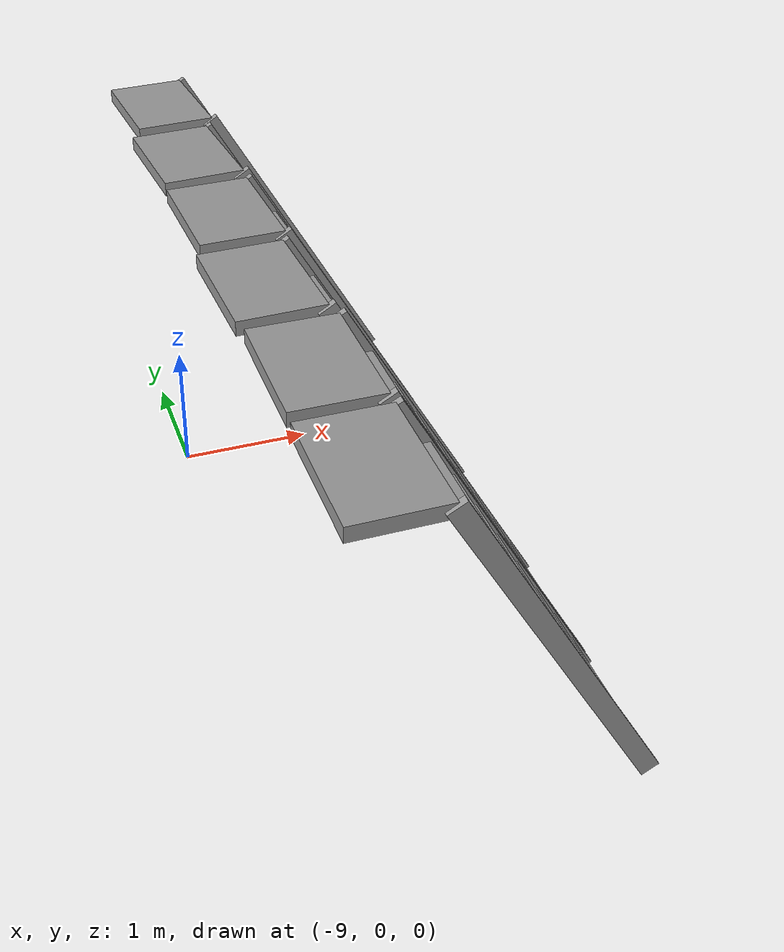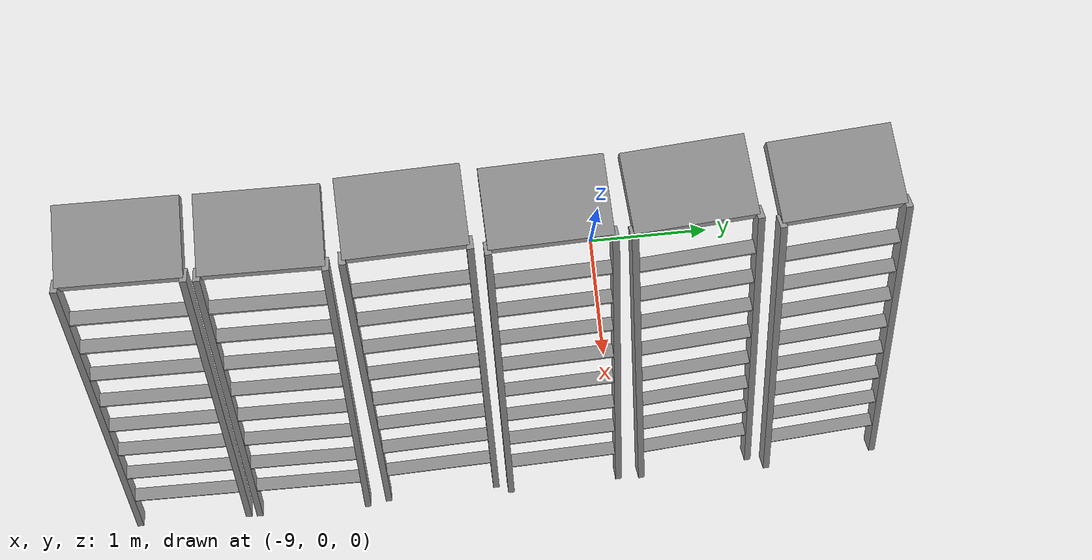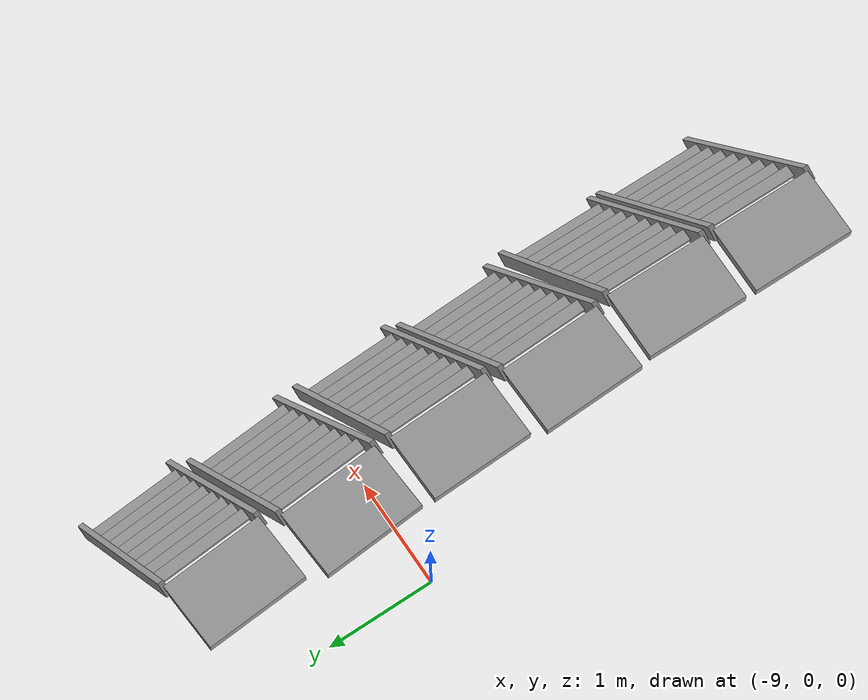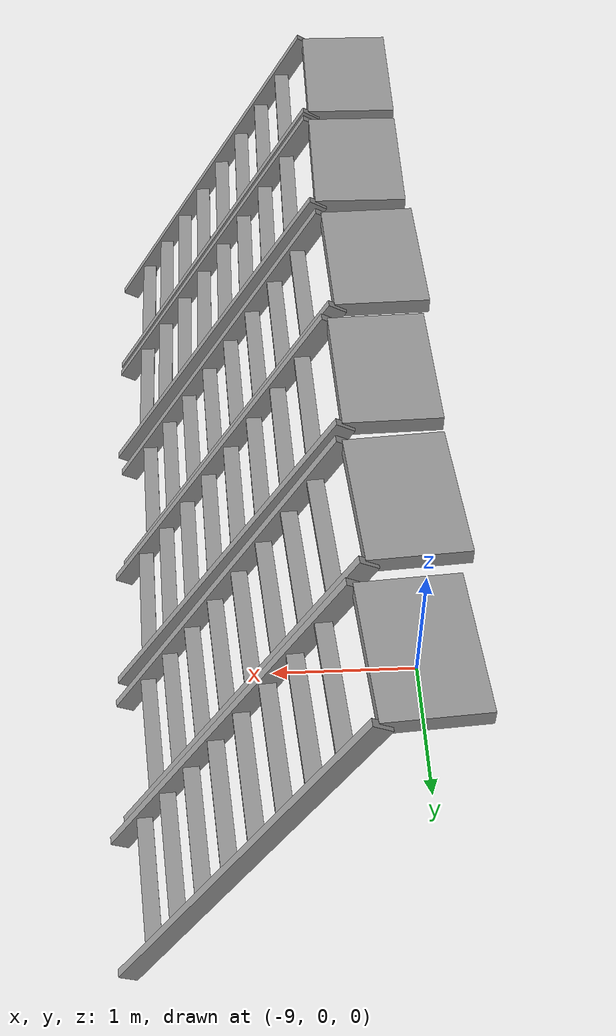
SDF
<sdf version="1.4">
 <world name="IGVC_Advanced_Course">
  <model name="ladder_60deg_0rails">
   <static>1</static>
   <link name="step0">
    <pose>0 0.15396 0.266667 0 -0 0</pose>
    <inertial>
     <mass>9.75482</mass>
     <inertia>
      <ixx>0.00957124</ixx>
      <iyy>0.65963</iyy>
      <izz>0.666842</izz>
      <ixy>0</ixy>
      <ixz>0</ixz>
      <iyz>0</iyz>
     </inertia>
    </inertial>
    <collision name="collision"><geometry><box><size>0.9 0.1016 0.0381</size></box></geometry></collision>
    <visual name="visual">
     <geometry><box><size>0.9 0.1016 0.0381</size></box></geometry>
     <material>
      <script><uri>file://media/materials/scripts/gazebo.material</uri><name>Gazebo/Grey</name></script>
     </material>
    </visual>
    <velocity_decay><linear>0</linear><angular>0</angular></velocity_decay>
   </link>
   <link name="step1">
    <pose>0 0.30792 0.533333 0 -0 0</pose>
    <inertial>
     <mass>9.75482</mass>
     <inertia>
      <ixx>0.00957124</ixx>
      <iyy>0.65963</iyy>
      <izz>0.666842</izz>
      <ixy>0</ixy>
      <ixz>0</ixz>
      <iyz>0</iyz>
     </inertia>
    </inertial>
    <collision name="collision"><geometry><box><size>0.9 0.1016 0.0381</size></box></geometry></collision>
    <visual name="visual">
     <geometry><box><size>0.9 0.1016 0.0381</size></box></geometry>
     <material>
      <script><uri>file://media/materials/scripts/gazebo.material</uri><name>Gazebo/Grey</name></script>
     </material>
    </visual>
    <velocity_decay><linear>0</linear><angular>0</angular></velocity_decay>
   </link>
   <link name="step2">
    <pose>0 0.46188 0.8 0 -0 0</pose>
    <inertial>
     <mass>9.75482</mass>
     <inertia>
      <ixx>0.00957124</ixx>
      <iyy>0.65963</iyy>
      <izz>0.666842</izz>
      <ixy>0</ixy>
      <ixz>0</ixz>
      <iyz>0</iyz>
     </inertia>
    </inertial>
    <collision name="collision"><geometry><box><size>0.9 0.1016 0.0381</size></box></geometry></collision>
    <visual name="visual">
     <geometry><box><size>0.9 0.1016 0.0381</size></box></geometry>
     <material>
      <script><uri>file://media/materials/scripts/gazebo.material</uri><name>Gazebo/Grey</name></script>
     </material>
    </visual>
    <velocity_decay><linear>0</linear><angular>0</angular></velocity_decay>
   </link>
   <link name="step3">
    <pose>0 0.61584 1.06667 0 -0 0</pose>
    <inertial>
     <mass>9.75482</mass>
     <inertia>
      <ixx>0.00957124</ixx>
      <iyy>0.65963</iyy>
      <izz>0.666842</izz>
      <ixy>0</ixy>
      <ixz>0</ixz>
      <iyz>0</iyz>
     </inertia>
    </inertial>
    <collision name="collision"><geometry><box><size>0.9 0.1016 0.0381</size></box></geometry></collision>
    <visual name="visual">
     <geometry><box><size>0.9 0.1016 0.0381</size></box></geometry>
     <material>
      <script><uri>file://media/materials/scripts/gazebo.material</uri><name>Gazebo/Grey</name></script>
     </material>
    </visual>
    <velocity_decay><linear>0</linear><angular>0</angular></velocity_decay>
   </link>
   <link name="step4">
    <pose>0 0.7698 1.33333 0 -0 0</pose>
    <inertial>
     <mass>9.75482</mass>
     <inertia>
      <ixx>0.00957124</ixx>
      <iyy>0.65963</iyy>
      <izz>0.666842</izz>
      <ixy>0</ixy>
      <ixz>0</ixz>
      <iyz>0</iyz>
     </inertia>
    </inertial>
    <collision name="collision"><geometry><box><size>0.9 0.1016 0.0381</size></box></geometry></collision>
    <visual name="visual">
     <geometry><box><size>0.9 0.1016 0.0381</size></box></geometry>
     <material>
      <script><uri>file://media/materials/scripts/gazebo.material</uri><name>Gazebo/Grey</name></script>
     </material>
    </visual>
    <velocity_decay><linear>0</linear><angular>0</angular></velocity_decay>
   </link>
   <link name="step5">
    <pose>0 0.92376 1.6 0 -0 0</pose>
    <inertial>
     <mass>9.75482</mass>
     <inertia>
      <ixx>0.00957124</ixx>
      <iyy>0.65963</iyy>
      <izz>0.666842</izz>
      <ixy>0</ixy>
      <ixz>0</ixz>
      <iyz>0</iyz>
     </inertia>
    </inertial>
    <collision name="collision"><geometry><box><size>0.9 0.1016 0.0381</size></box></geometry></collision>
    <visual name="visual">
     <geometry><box><size>0.9 0.1016 0.0381</size></box></geometry>
     <material>
      <script><uri>file://media/materials/scripts/gazebo.material</uri><name>Gazebo/Grey</name></script>
     </material>
    </visual>
    <velocity_decay><linear>0</linear><angular>0</angular></velocity_decay>
   </link>
   <link name="step6">
    <pose>0 1.07772 1.86667 0 -0 0</pose>
    <inertial>
     <mass>9.75482</mass>
     <inertia>
      <ixx>0.00957124</ixx>
      <iyy>0.65963</iyy>
      <izz>0.666842</izz>
      <ixy>0</ixy>
      <ixz>0</ixz>
      <iyz>0</iyz>
     </inertia>
    </inertial>
    <collision name="collision"><geometry><box><size>0.9 0.1016 0.0381</size></box></geometry></collision>
    <visual name="visual">
     <geometry><box><size>0.9 0.1016 0.0381</size></box></geometry>
     <material>
      <script><uri>file://media/materials/scripts/gazebo.material</uri><name>Gazebo/Grey</name></script>
     </material>
    </visual>
    <velocity_decay><linear>0</linear><angular>0</angular></velocity_decay>
   </link>
   <link name="step7">
    <pose>0 1.23168 2.13333 0 -0 0</pose>
    <inertial>
     <mass>9.75482</mass>
     <inertia>
      <ixx>0.00957124</ixx>
      <iyy>0.65963</iyy>
      <izz>0.666842</izz>
      <ixy>0</ixy>
      <ixz>0</ixz>
      <iyz>0</iyz>
     </inertia>
    </inertial>
    <collision name="collision"><geometry><box><size>0.9 0.1016 0.0381</size></box></geometry></collision>
    <visual name="visual">
     <geometry><box><size>0.9 0.1016 0.0381</size></box></geometry>
     <material>
      <script><uri>file://media/materials/scripts/gazebo.material</uri><name>Gazebo/Grey</name></script>
     </material>
    </visual>
    <velocity_decay><linear>0</linear><angular>0</angular></velocity_decay>
   </link>
   <link name="landing">
    <pose>0 1.68564 2.4 0 -0 0</pose>
    <inertial>
     <mass>57.6072</mass>
     <inertia><ixx>1.73518</ixx><iyy>3.89545</iyy><izz>5.6167</izz><ixy>0</ixy><ixz>0</ixz><iyz>0</iyz></inertia>
    </inertial>
    <collision name="collision"><geometry><box><size>0.9 0.6 0.1016</size></box></geometry></collision>
    <visual name="visual">
     <geometry><box><size>0.9 0.6 0.1016</size></box></geometry>
     <material>
      <script><uri>file://media/materials/scripts/gazebo.material</uri><name>Gazebo/Grey</name></script>
     </material>
    </visual>
    <velocity_decay><linear>0</linear><angular>0</angular></velocity_decay>
   </link>
   <link name="left_side_wall">
    <pose>-0.45 0.69282 1.2 1.0472 -0 0</pose>
    <collision name="collision"><geometry><box><size>0.0508 2.85128 0.13</size></box></geometry></collision>
    <visual name="visual">
     <geometry><box><size>0.0508 2.85128 0.13</size></box></geometry>
     <material>
      <script><uri>file://media/materials/scripts/gazebo.material</uri><name>Gazebo/Grey</name></script>
     </material>
    </visual>
    <velocity_decay><linear>0</linear><angular>0</angular></velocity_decay>
   </link>
   <link name="right_side_wall">
    <pose>0.45 0.69282 1.2 1.0472 -0 0</pose>
    <collision name="collision"><geometry><box><size>0.0508 2.85128 0.13</size></box></geometry></collision>
    <visual name="visual">
     <geometry><box><size>0.0508 2.85128 0.13</size></box></geometry>
     <material>
      <script><uri>file://media/materials/scripts/gazebo.material</uri><name>Gazebo/Grey</name></script>
     </material>
    </visual>
    <velocity_decay><linear>0</linear><angular>0</angular></velocity_decay>
   </link>
   <pose>-6.99475 -2.53648 0 0 -0 1.56</pose>
  </model>
  <model name="ladder_60deg_0rails_0">
   <static>1</static>
   <link name="step0">
    <pose>0 0.15396 0.266667 0 -0 0</pose>
    <inertial>
     <mass>9.75482</mass>
     <inertia>
      <ixx>0.00957124</ixx>
      <iyy>0.65963</iyy>
      <izz>0.666842</izz>
      <ixy>0</ixy>
      <ixz>0</ixz>
      <iyz>0</iyz>
     </inertia>
    </inertial>
    <collision name="collision"><geometry><box><size>0.9 0.1016 0.0381</size></box></geometry></collision>
    <visual name="visual">
     <geometry><box><size>0.9 0.1016 0.0381</size></box></geometry>
     <material>
      <script><uri>file://media/materials/scripts/gazebo.material</uri><name>Gazebo/Grey</name></script>
     </material>
    </visual>
    <velocity_decay><linear>0</linear><angular>0</angular></velocity_decay>
   </link>
   <link name="step1">
    <pose>0 0.30792 0.533333 0 -0 0</pose>
    <inertial>
     <mass>9.75482</mass>
     <inertia>
      <ixx>0.00957124</ixx>
      <iyy>0.65963</iyy>
      <izz>0.666842</izz>
      <ixy>0</ixy>
      <ixz>0</ixz>
      <iyz>0</iyz>
     </inertia>
    </inertial>
    <collision name="collision"><geometry><box><size>0.9 0.1016 0.0381</size></box></geometry></collision>
    <visual name="visual">
     <geometry><box><size>0.9 0.1016 0.0381</size></box></geometry>
     <material>
      <script><uri>file://media/materials/scripts/gazebo.material</uri><name>Gazebo/Grey</name></script>
     </material>
    </visual>
    <velocity_decay><linear>0</linear><angular>0</angular></velocity_decay>
   </link>
   <link name="step2">
    <pose>0 0.46188 0.8 0 -0 0</pose>
    <inertial>
     <mass>9.75482</mass>
     <inertia>
      <ixx>0.00957124</ixx>
      <iyy>0.65963</iyy>
      <izz>0.666842</izz>
      <ixy>0</ixy>
      <ixz>0</ixz>
      <iyz>0</iyz>
     </inertia>
    </inertial>
    <collision name="collision"><geometry><box><size>0.9 0.1016 0.0381</size></box></geometry></collision>
    <visual name="visual">
     <geometry><box><size>0.9 0.1016 0.0381</size></box></geometry>
     <material>
      <script><uri>file://media/materials/scripts/gazebo.material</uri><name>Gazebo/Grey</name></script>
     </material>
    </visual>
    <velocity_decay><linear>0</linear><angular>0</angular></velocity_decay>
   </link>
   <link name="step3">
    <pose>0 0.61584 1.06667 0 -0 0</pose>
    <inertial>
     <mass>9.75482</mass>
     <inertia>
      <ixx>0.00957124</ixx>
      <iyy>0.65963</iyy>
      <izz>0.666842</izz>
      <ixy>0</ixy>
      <ixz>0</ixz>
      <iyz>0</iyz>
     </inertia>
    </inertial>
    <collision name="collision"><geometry><box><size>0.9 0.1016 0.0381</size></box></geometry></collision>
    <visual name="visual">
     <geometry><box><size>0.9 0.1016 0.0381</size></box></geometry>
     <material>
      <script><uri>file://media/materials/scripts/gazebo.material</uri><name>Gazebo/Grey</name></script>
     </material>
    </visual>
    <velocity_decay><linear>0</linear><angular>0</angular></velocity_decay>
   </link>
   <link name="step4">
    <pose>0 0.7698 1.33333 0 -0 0</pose>
    <inertial>
     <mass>9.75482</mass>
     <inertia>
      <ixx>0.00957124</ixx>
      <iyy>0.65963</iyy>
      <izz>0.666842</izz>
      <ixy>0</ixy>
      <ixz>0</ixz>
      <iyz>0</iyz>
     </inertia>
    </inertial>
    <collision name="collision"><geometry><box><size>0.9 0.1016 0.0381</size></box></geometry></collision>
    <visual name="visual">
     <geometry><box><size>0.9 0.1016 0.0381</size></box></geometry>
     <material>
      <script><uri>file://media/materials/scripts/gazebo.material</uri><name>Gazebo/Grey</name></script>
     </material>
    </visual>
    <velocity_decay><linear>0</linear><angular>0</angular></velocity_decay>
   </link>
   <link name="step5">
    <pose>0 0.92376 1.6 0 -0 0</pose>
    <inertial>
     <mass>9.75482</mass>
     <inertia>
      <ixx>0.00957124</ixx>
      <iyy>0.65963</iyy>
      <izz>0.666842</izz>
      <ixy>0</ixy>
      <ixz>0</ixz>
      <iyz>0</iyz>
     </inertia>
    </inertial>
    <collision name="collision"><geometry><box><size>0.9 0.1016 0.0381</size></box></geometry></collision>
    <visual name="visual">
     <geometry><box><size>0.9 0.1016 0.0381</size></box></geometry>
     <material>
      <script><uri>file://media/materials/scripts/gazebo.material</uri><name>Gazebo/Grey</name></script>
     </material>
    </visual>
    <velocity_decay><linear>0</linear><angular>0</angular></velocity_decay>
   </link>
   <link name="step6">
    <pose>0 1.07772 1.86667 0 -0 0</pose>
    <inertial>
     <mass>9.75482</mass>
     <inertia>
      <ixx>0.00957124</ixx>
      <iyy>0.65963</iyy>
      <izz>0.666842</izz>
      <ixy>0</ixy>
      <ixz>0</ixz>
      <iyz>0</iyz>
     </inertia>
    </inertial>
    <collision name="collision"><geometry><box><size>0.9 0.1016 0.0381</size></box></geometry></collision>
    <visual name="visual">
     <geometry><box><size>0.9 0.1016 0.0381</size></box></geometry>
     <material>
      <script><uri>file://media/materials/scripts/gazebo.material</uri><name>Gazebo/Grey</name></script>
     </material>
    </visual>
    <velocity_decay><linear>0</linear><angular>0</angular></velocity_decay>
   </link>
   <link name="step7">
    <pose>0 1.23168 2.13333 0 -0 0</pose>
    <inertial>
     <mass>9.75482</mass>
     <inertia>
      <ixx>0.00957124</ixx>
      <iyy>0.65963</iyy>
      <izz>0.666842</izz>
      <ixy>0</ixy>
      <ixz>0</ixz>
      <iyz>0</iyz>
     </inertia>
    </inertial>
    <collision name="collision"><geometry><box><size>0.9 0.1016 0.0381</size></box></geometry></collision>
    <visual name="visual">
     <geometry><box><size>0.9 0.1016 0.0381</size></box></geometry>
     <material>
      <script><uri>file://media/materials/scripts/gazebo.material</uri><name>Gazebo/Grey</name></script>
     </material>
    </visual>
    <velocity_decay><linear>0</linear><angular>0</angular></velocity_decay>
   </link>
   <link name="landing">
    <pose>0 1.68564 2.4 0 -0 0</pose>
    <inertial>
     <mass>57.6072</mass>
     <inertia><ixx>1.73518</ixx><iyy>3.89545</iyy><izz>5.6167</izz><ixy>0</ixy><ixz>0</ixz><iyz>0</iyz></inertia>
    </inertial>
    <collision name="collision"><geometry><box><size>0.9 0.6 0.1016</size></box></geometry></collision>
    <visual name="visual">
     <geometry><box><size>0.9 0.6 0.1016</size></box></geometry>
     <material>
      <script><uri>file://media/materials/scripts/gazebo.material</uri><name>Gazebo/Grey</name></script>
     </material>
    </visual>
    <velocity_decay><linear>0</linear><angular>0</angular></velocity_decay>
   </link>
   <link name="left_side_wall">
    <pose>-0.45 0.69282 1.2 1.0472 -0 0</pose>
    <collision name="collision"><geometry><box><size>0.0508 2.85128 0.13</size></box></geometry></collision>
    <visual name="visual">
     <geometry><box><size>0.0508 2.85128 0.13</size></box></geometry>
     <material>
      <script><uri>file://media/materials/scripts/gazebo.material</uri><name>Gazebo/Grey</name></script>
     </material>
    </visual>
    <velocity_decay><linear>0</linear><angular>0</angular></velocity_decay>
   </link>
   <link name="right_side_wall">
    <pose>0.45 0.69282 1.2 1.0472 -0 0</pose>
    <collision name="collision"><geometry><box><size>0.0508 2.85128 0.13</size></box></geometry></collision>
    <visual name="visual">
     <geometry><box><size>0.0508 2.85128 0.13</size></box></geometry>
     <material>
      <script><uri>file://media/materials/scripts/gazebo.material</uri><name>Gazebo/Grey</name></script>
     </material>
    </visual>
    <velocity_decay><linear>0</linear><angular>0</angular></velocity_decay>
   </link>
   <pose>-7.00892 -3.52777 0 0 -0 1.56</pose>
  </model>
  <model name="ladder_60deg_0rails_1">
   <static>1</static>
   <link name="step0">
    <pose>0 0.15396 0.266667 0 -0 0</pose>
    <inertial>
     <mass>9.75482</mass>
     <inertia>
      <ixx>0.00957124</ixx>
      <iyy>0.65963</iyy>
      <izz>0.666842</izz>
      <ixy>0</ixy>
      <ixz>0</ixz>
      <iyz>0</iyz>
     </inertia>
    </inertial>
    <collision name="collision"><geometry><box><size>0.9 0.1016 0.0381</size></box></geometry></collision>
    <visual name="visual">
     <geometry><box><size>0.9 0.1016 0.0381</size></box></geometry>
     <material>
      <script><uri>file://media/materials/scripts/gazebo.material</uri><name>Gazebo/Grey</name></script>
     </material>
    </visual>
    <velocity_decay><linear>0</linear><angular>0</angular></velocity_decay>
   </link>
   <link name="step1">
    <pose>0 0.30792 0.533333 0 -0 0</pose>
    <inertial>
     <mass>9.75482</mass>
     <inertia>
      <ixx>0.00957124</ixx>
      <iyy>0.65963</iyy>
      <izz>0.666842</izz>
      <ixy>0</ixy>
      <ixz>0</ixz>
      <iyz>0</iyz>
     </inertia>
    </inertial>
    <collision name="collision"><geometry><box><size>0.9 0.1016 0.0381</size></box></geometry></collision>
    <visual name="visual">
     <geometry><box><size>0.9 0.1016 0.0381</size></box></geometry>
     <material>
      <script><uri>file://media/materials/scripts/gazebo.material</uri><name>Gazebo/Grey</name></script>
     </material>
    </visual>
    <velocity_decay><linear>0</linear><angular>0</angular></velocity_decay>
   </link>
   <link name="step2">
    <pose>0 0.46188 0.8 0 -0 0</pose>
    <inertial>
     <mass>9.75482</mass>
     <inertia>
      <ixx>0.00957124</ixx>
      <iyy>0.65963</iyy>
      <izz>0.666842</izz>
      <ixy>0</ixy>
      <ixz>0</ixz>
      <iyz>0</iyz>
     </inertia>
    </inertial>
    <collision name="collision"><geometry><box><size>0.9 0.1016 0.0381</size></box></geometry></collision>
    <visual name="visual">
     <geometry><box><size>0.9 0.1016 0.0381</size></box></geometry>
     <material>
      <script><uri>file://media/materials/scripts/gazebo.material</uri><name>Gazebo/Grey</name></script>
     </material>
    </visual>
    <velocity_decay><linear>0</linear><angular>0</angular></velocity_decay>
   </link>
   <link name="step3">
    <pose>0 0.61584 1.06667 0 -0 0</pose>
    <inertial>
     <mass>9.75482</mass>
     <inertia>
      <ixx>0.00957124</ixx>
      <iyy>0.65963</iyy>
      <izz>0.666842</izz>
      <ixy>0</ixy>
      <ixz>0</ixz>
      <iyz>0</iyz>
     </inertia>
    </inertial>
    <collision name="collision"><geometry><box><size>0.9 0.1016 0.0381</size></box></geometry></collision>
    <visual name="visual">
     <geometry><box><size>0.9 0.1016 0.0381</size></box></geometry>
     <material>
      <script><uri>file://media/materials/scripts/gazebo.material</uri><name>Gazebo/Grey</name></script>
     </material>
    </visual>
    <velocity_decay><linear>0</linear><angular>0</angular></velocity_decay>
   </link>
   <link name="step4">
    <pose>0 0.7698 1.33333 0 -0 0</pose>
    <inertial>
     <mass>9.75482</mass>
     <inertia>
      <ixx>0.00957124</ixx>
      <iyy>0.65963</iyy>
      <izz>0.666842</izz>
      <ixy>0</ixy>
      <ixz>0</ixz>
      <iyz>0</iyz>
     </inertia>
    </inertial>
    <collision name="collision"><geometry><box><size>0.9 0.1016 0.0381</size></box></geometry></collision>
    <visual name="visual">
     <geometry><box><size>0.9 0.1016 0.0381</size></box></geometry>
     <material>
      <script><uri>file://media/materials/scripts/gazebo.material</uri><name>Gazebo/Grey</name></script>
     </material>
    </visual>
    <velocity_decay><linear>0</linear><angular>0</angular></velocity_decay>
   </link>
   <link name="step5">
    <pose>0 0.92376 1.6 0 -0 0</pose>
    <inertial>
     <mass>9.75482</mass>
     <inertia>
      <ixx>0.00957124</ixx>
      <iyy>0.65963</iyy>
      <izz>0.666842</izz>
      <ixy>0</ixy>
      <ixz>0</ixz>
      <iyz>0</iyz>
     </inertia>
    </inertial>
    <collision name="collision"><geometry><box><size>0.9 0.1016 0.0381</size></box></geometry></collision>
    <visual name="visual">
     <geometry><box><size>0.9 0.1016 0.0381</size></box></geometry>
     <material>
      <script><uri>file://media/materials/scripts/gazebo.material</uri><name>Gazebo/Grey</name></script>
     </material>
    </visual>
    <velocity_decay><linear>0</linear><angular>0</angular></velocity_decay>
   </link>
   <link name="step6">
    <pose>0 1.07772 1.86667 0 -0 0</pose>
    <inertial>
     <mass>9.75482</mass>
     <inertia>
      <ixx>0.00957124</ixx>
      <iyy>0.65963</iyy>
      <izz>0.666842</izz>
      <ixy>0</ixy>
      <ixz>0</ixz>
      <iyz>0</iyz>
     </inertia>
    </inertial>
    <collision name="collision"><geometry><box><size>0.9 0.1016 0.0381</size></box></geometry></collision>
    <visual name="visual">
     <geometry><box><size>0.9 0.1016 0.0381</size></box></geometry>
     <material>
      <script><uri>file://media/materials/scripts/gazebo.material</uri><name>Gazebo/Grey</name></script>
     </material>
    </visual>
    <velocity_decay><linear>0</linear><angular>0</angular></velocity_decay>
   </link>
   <link name="step7">
    <pose>0 1.23168 2.13333 0 -0 0</pose>
    <inertial>
     <mass>9.75482</mass>
     <inertia>
      <ixx>0.00957124</ixx>
      <iyy>0.65963</iyy>
      <izz>0.666842</izz>
      <ixy>0</ixy>
      <ixz>0</ixz>
      <iyz>0</iyz>
     </inertia>
    </inertial>
    <collision name="collision"><geometry><box><size>0.9 0.1016 0.0381</size></box></geometry></collision>
    <visual name="visual">
     <geometry><box><size>0.9 0.1016 0.0381</size></box></geometry>
     <material>
      <script><uri>file://media/materials/scripts/gazebo.material</uri><name>Gazebo/Grey</name></script>
     </material>
    </visual>
    <velocity_decay><linear>0</linear><angular>0</angular></velocity_decay>
   </link>
   <link name="landing">
    <pose>0 1.68564 2.4 0 -0 0</pose>
    <inertial>
     <mass>57.6072</mass>
     <inertia><ixx>1.73518</ixx><iyy>3.89545</iyy><izz>5.6167</izz><ixy>0</ixy><ixz>0</ixz><iyz>0</iyz></inertia>
    </inertial>
    <collision name="collision"><geometry><box><size>0.9 0.6 0.1016</size></box></geometry></collision>
    <visual name="visual">
     <geometry><box><size>0.9 0.6 0.1016</size></box></geometry>
     <material>
      <script><uri>file://media/materials/scripts/gazebo.material</uri><name>Gazebo/Grey</name></script>
     </material>
    </visual>
    <velocity_decay><linear>0</linear><angular>0</angular></velocity_decay>
   </link>
   <link name="left_side_wall">
    <pose>-0.45 0.69282 1.2 1.0472 -0 0</pose>
    <collision name="collision"><geometry><box><size>0.0508 2.85128 0.13</size></box></geometry></collision>
    <visual name="visual">
     <geometry><box><size>0.0508 2.85128 0.13</size></box></geometry>
     <material>
      <script><uri>file://media/materials/scripts/gazebo.material</uri><name>Gazebo/Grey</name></script>
     </material>
    </visual>
    <velocity_decay><linear>0</linear><angular>0</angular></velocity_decay>
   </link>
   <link name="right_side_wall">
    <pose>0.45 0.69282 1.2 1.0472 -0 0</pose>
    <collision name="collision"><geometry><box><size>0.0508 2.85128 0.13</size></box></geometry></collision>
    <visual name="visual">
     <geometry><box><size>0.0508 2.85128 0.13</size></box></geometry>
     <material>
      <script><uri>file://media/materials/scripts/gazebo.material</uri><name>Gazebo/Grey</name></script>
     </material>
    </visual>
    <velocity_decay><linear>0</linear><angular>0</angular></velocity_decay>
   </link>
   <pose>-7.03222 -1.46285 0 0 -0 1.6</pose>
  </model>
  <model name="ladder_60deg_0rails_2">
   <static>1</static>
   <link name="step0">
    <pose>0 0.15396 0.266667 0 -0 0</pose>
    <inertial>
     <mass>9.75482</mass>
     <inertia>
      <ixx>0.00957124</ixx>
      <iyy>0.65963</iyy>
      <izz>0.666842</izz>
      <ixy>0</ixy>
      <ixz>0</ixz>
      <iyz>0</iyz>
     </inertia>
    </inertial>
    <collision name="collision"><geometry><box><size>0.9 0.1016 0.0381</size></box></geometry></collision>
    <visual name="visual">
     <geometry><box><size>0.9 0.1016 0.0381</size></box></geometry>
     <material>
      <script><uri>file://media/materials/scripts/gazebo.material</uri><name>Gazebo/Grey</name></script>
     </material>
    </visual>
    <velocity_decay><linear>0</linear><angular>0</angular></velocity_decay>
   </link>
   <link name="step1">
    <pose>0 0.30792 0.533333 0 -0 0</pose>
    <inertial>
     <mass>9.75482</mass>
     <inertia>
      <ixx>0.00957124</ixx>
      <iyy>0.65963</iyy>
      <izz>0.666842</izz>
      <ixy>0</ixy>
      <ixz>0</ixz>
      <iyz>0</iyz>
     </inertia>
    </inertial>
    <collision name="collision"><geometry><box><size>0.9 0.1016 0.0381</size></box></geometry></collision>
    <visual name="visual">
     <geometry><box><size>0.9 0.1016 0.0381</size></box></geometry>
     <material>
      <script><uri>file://media/materials/scripts/gazebo.material</uri><name>Gazebo/Grey</name></script>
     </material>
    </visual>
    <velocity_decay><linear>0</linear><angular>0</angular></velocity_decay>
   </link>
   <link name="step2">
    <pose>0 0.46188 0.8 0 -0 0</pose>
    <inertial>
     <mass>9.75482</mass>
     <inertia>
      <ixx>0.00957124</ixx>
      <iyy>0.65963</iyy>
      <izz>0.666842</izz>
      <ixy>0</ixy>
      <ixz>0</ixz>
      <iyz>0</iyz>
     </inertia>
    </inertial>
    <collision name="collision"><geometry><box><size>0.9 0.1016 0.0381</size></box></geometry></collision>
    <visual name="visual">
     <geometry><box><size>0.9 0.1016 0.0381</size></box></geometry>
     <material>
      <script><uri>file://media/materials/scripts/gazebo.material</uri><name>Gazebo/Grey</name></script>
     </material>
    </visual>
    <velocity_decay><linear>0</linear><angular>0</angular></velocity_decay>
   </link>
   <link name="step3">
    <pose>0 0.61584 1.06667 0 -0 0</pose>
    <inertial>
     <mass>9.75482</mass>
     <inertia>
      <ixx>0.00957124</ixx>
      <iyy>0.65963</iyy>
      <izz>0.666842</izz>
      <ixy>0</ixy>
      <ixz>0</ixz>
      <iyz>0</iyz>
     </inertia>
    </inertial>
    <collision name="collision"><geometry><box><size>0.9 0.1016 0.0381</size></box></geometry></collision>
    <visual name="visual">
     <geometry><box><size>0.9 0.1016 0.0381</size></box></geometry>
     <material>
      <script><uri>file://media/materials/scripts/gazebo.material</uri><name>Gazebo/Grey</name></script>
     </material>
    </visual>
    <velocity_decay><linear>0</linear><angular>0</angular></velocity_decay>
   </link>
   <link name="step4">
    <pose>0 0.7698 1.33333 0 -0 0</pose>
    <inertial>
     <mass>9.75482</mass>
     <inertia>
      <ixx>0.00957124</ixx>
      <iyy>0.65963</iyy>
      <izz>0.666842</izz>
      <ixy>0</ixy>
      <ixz>0</ixz>
      <iyz>0</iyz>
     </inertia>
    </inertial>
    <collision name="collision"><geometry><box><size>0.9 0.1016 0.0381</size></box></geometry></collision>
    <visual name="visual">
     <geometry><box><size>0.9 0.1016 0.0381</size></box></geometry>
     <material>
      <script><uri>file://media/materials/scripts/gazebo.material</uri><name>Gazebo/Grey</name></script>
     </material>
    </visual>
    <velocity_decay><linear>0</linear><angular>0</angular></velocity_decay>
   </link>
   <link name="step5">
    <pose>0 0.92376 1.6 0 -0 0</pose>
    <inertial>
     <mass>9.75482</mass>
     <inertia>
      <ixx>0.00957124</ixx>
      <iyy>0.65963</iyy>
      <izz>0.666842</izz>
      <ixy>0</ixy>
      <ixz>0</ixz>
      <iyz>0</iyz>
     </inertia>
    </inertial>
    <collision name="collision"><geometry><box><size>0.9 0.1016 0.0381</size></box></geometry></collision>
    <visual name="visual">
     <geometry><box><size>0.9 0.1016 0.0381</size></box></geometry>
     <material>
      <script><uri>file://media/materials/scripts/gazebo.material</uri><name>Gazebo/Grey</name></script>
     </material>
    </visual>
    <velocity_decay><linear>0</linear><angular>0</angular></velocity_decay>
   </link>
   <link name="step6">
    <pose>0 1.07772 1.86667 0 -0 0</pose>
    <inertial>
     <mass>9.75482</mass>
     <inertia>
      <ixx>0.00957124</ixx>
      <iyy>0.65963</iyy>
      <izz>0.666842</izz>
      <ixy>0</ixy>
      <ixz>0</ixz>
      <iyz>0</iyz>
     </inertia>
    </inertial>
    <collision name="collision"><geometry><box><size>0.9 0.1016 0.0381</size></box></geometry></collision>
    <visual name="visual">
     <geometry><box><size>0.9 0.1016 0.0381</size></box></geometry>
     <material>
      <script><uri>file://media/materials/scripts/gazebo.material</uri><name>Gazebo/Grey</name></script>
     </material>
    </visual>
    <velocity_decay><linear>0</linear><angular>0</angular></velocity_decay>
   </link>
   <link name="step7">
    <pose>0 1.23168 2.13333 0 -0 0</pose>
    <inertial>
     <mass>9.75482</mass>
     <inertia>
      <ixx>0.00957124</ixx>
      <iyy>0.65963</iyy>
      <izz>0.666842</izz>
      <ixy>0</ixy>
      <ixz>0</ixz>
      <iyz>0</iyz>
     </inertia>
    </inertial>
    <collision name="collision"><geometry><box><size>0.9 0.1016 0.0381</size></box></geometry></collision>
    <visual name="visual">
     <geometry><box><size>0.9 0.1016 0.0381</size></box></geometry>
     <material>
      <script><uri>file://media/materials/scripts/gazebo.material</uri><name>Gazebo/Grey</name></script>
     </material>
    </visual>
    <velocity_decay><linear>0</linear><angular>0</angular></velocity_decay>
   </link>
   <link name="landing">
    <pose>0 1.68564 2.4 0 -0 0</pose>
    <inertial>
     <mass>57.6072</mass>
     <inertia><ixx>1.73518</ixx><iyy>3.89545</iyy><izz>5.6167</izz><ixy>0</ixy><ixz>0</ixz><iyz>0</iyz></inertia>
    </inertial>
    <collision name="collision"><geometry><box><size>0.9 0.6 0.1016</size></box></geometry></collision>
    <visual name="visual">
     <geometry><box><size>0.9 0.6 0.1016</size></box></geometry>
     <material>
      <script><uri>file://media/materials/scripts/gazebo.material</uri><name>Gazebo/Grey</name></script>
     </material>
    </visual>
    <velocity_decay><linear>0</linear><angular>0</angular></velocity_decay>
   </link>
   <link name="left_side_wall">
    <pose>-0.45 0.69282 1.2 1.0472 -0 0</pose>
    <collision name="collision"><geometry><box><size>0.0508 2.85128 0.13</size></box></geometry></collision>
    <visual name="visual">
     <geometry><box><size>0.0508 2.85128 0.13</size></box></geometry>
     <material>
      <script><uri>file://media/materials/scripts/gazebo.material</uri><name>Gazebo/Grey</name></script>
     </material>
    </visual>
    <velocity_decay><linear>0</linear><angular>0</angular></velocity_decay>
   </link>
   <link name="right_side_wall">
    <pose>0.45 0.69282 1.2 1.0472 -0 0</pose>
    <collision name="collision"><geometry><box><size>0.0508 2.85128 0.13</size></box></geometry></collision>
    <visual name="visual">
     <geometry><box><size>0.0508 2.85128 0.13</size></box></geometry>
     <material>
      <script><uri>file://media/materials/scripts/gazebo.material</uri><name>Gazebo/Grey</name></script>
     </material>
    </visual>
    <velocity_decay><linear>0</linear><angular>0</angular></velocity_decay>
   </link>
   <pose>-7.0048 -0.442369 0 0 -0 1.6</pose>
  </model>
  <model name="ladder_60deg_0rails_3">
   <static>1</static>
   <link name="step0">
    <pose>0 0.15396 0.266667 0 -0 0</pose>
    <inertial>
     <mass>9.75482</mass>
     <inertia>
      <ixx>0.00957124</ixx>
      <iyy>0.65963</iyy>
      <izz>0.666842</izz>
      <ixy>0</ixy>
      <ixz>0</ixz>
      <iyz>0</iyz>
     </inertia>
    </inertial>
    <collision name="collision"><geometry><box><size>0.9 0.1016 0.0381</size></box></geometry></collision>
    <visual name="visual">
     <geometry><box><size>0.9 0.1016 0.0381</size></box></geometry>
     <material>
      <script><uri>file://media/materials/scripts/gazebo.material</uri><name>Gazebo/Grey</name></script>
     </material>
    </visual>
    <velocity_decay><linear>0</linear><angular>0</angular></velocity_decay>
   </link>
   <link name="step1">
    <pose>0 0.30792 0.533333 0 -0 0</pose>
    <inertial>
     <mass>9.75482</mass>
     <inertia>
      <ixx>0.00957124</ixx>
      <iyy>0.65963</iyy>
      <izz>0.666842</izz>
      <ixy>0</ixy>
      <ixz>0</ixz>
      <iyz>0</iyz>
     </inertia>
    </inertial>
    <collision name="collision"><geometry><box><size>0.9 0.1016 0.0381</size></box></geometry></collision>
    <visual name="visual">
     <geometry><box><size>0.9 0.1016 0.0381</size></box></geometry>
     <material>
      <script><uri>file://media/materials/scripts/gazebo.material</uri><name>Gazebo/Grey</name></script>
     </material>
    </visual>
    <velocity_decay><linear>0</linear><angular>0</angular></velocity_decay>
   </link>
   <link name="step2">
    <pose>0 0.46188 0.8 0 -0 0</pose>
    <inertial>
     <mass>9.75482</mass>
     <inertia>
      <ixx>0.00957124</ixx>
      <iyy>0.65963</iyy>
      <izz>0.666842</izz>
      <ixy>0</ixy>
      <ixz>0</ixz>
      <iyz>0</iyz>
     </inertia>
    </inertial>
    <collision name="collision"><geometry><box><size>0.9 0.1016 0.0381</size></box></geometry></collision>
    <visual name="visual">
     <geometry><box><size>0.9 0.1016 0.0381</size></box></geometry>
     <material>
      <script><uri>file://media/materials/scripts/gazebo.material</uri><name>Gazebo/Grey</name></script>
     </material>
    </visual>
    <velocity_decay><linear>0</linear><angular>0</angular></velocity_decay>
   </link>
   <link name="step3">
    <pose>0 0.61584 1.06667 0 -0 0</pose>
    <inertial>
     <mass>9.75482</mass>
     <inertia>
      <ixx>0.00957124</ixx>
      <iyy>0.65963</iyy>
      <izz>0.666842</izz>
      <ixy>0</ixy>
      <ixz>0</ixz>
      <iyz>0</iyz>
     </inertia>
    </inertial>
    <collision name="collision"><geometry><box><size>0.9 0.1016 0.0381</size></box></geometry></collision>
    <visual name="visual">
     <geometry><box><size>0.9 0.1016 0.0381</size></box></geometry>
     <material>
      <script><uri>file://media/materials/scripts/gazebo.material</uri><name>Gazebo/Grey</name></script>
     </material>
    </visual>
    <velocity_decay><linear>0</linear><angular>0</angular></velocity_decay>
   </link>
   <link name="step4">
    <pose>0 0.7698 1.33333 0 -0 0</pose>
    <inertial>
     <mass>9.75482</mass>
     <inertia>
      <ixx>0.00957124</ixx>
      <iyy>0.65963</iyy>
      <izz>0.666842</izz>
      <ixy>0</ixy>
      <ixz>0</ixz>
      <iyz>0</iyz>
     </inertia>
    </inertial>
    <collision name="collision"><geometry><box><size>0.9 0.1016 0.0381</size></box></geometry></collision>
    <visual name="visual">
     <geometry><box><size>0.9 0.1016 0.0381</size></box></geometry>
     <material>
      <script><uri>file://media/materials/scripts/gazebo.material</uri><name>Gazebo/Grey</name></script>
     </material>
    </visual>
    <velocity_decay><linear>0</linear><angular>0</angular></velocity_decay>
   </link>
   <link name="step5">
    <pose>0 0.92376 1.6 0 -0 0</pose>
    <inertial>
     <mass>9.75482</mass>
     <inertia>
      <ixx>0.00957124</ixx>
      <iyy>0.65963</iyy>
      <izz>0.666842</izz>
      <ixy>0</ixy>
      <ixz>0</ixz>
      <iyz>0</iyz>
     </inertia>
    </inertial>
    <collision name="collision"><geometry><box><size>0.9 0.1016 0.0381</size></box></geometry></collision>
    <visual name="visual">
     <geometry><box><size>0.9 0.1016 0.0381</size></box></geometry>
     <material>
      <script><uri>file://media/materials/scripts/gazebo.material</uri><name>Gazebo/Grey</name></script>
     </material>
    </visual>
    <velocity_decay><linear>0</linear><angular>0</angular></velocity_decay>
   </link>
   <link name="step6">
    <pose>0 1.07772 1.86667 0 -0 0</pose>
    <inertial>
     <mass>9.75482</mass>
     <inertia>
      <ixx>0.00957124</ixx>
      <iyy>0.65963</iyy>
      <izz>0.666842</izz>
      <ixy>0</ixy>
      <ixz>0</ixz>
      <iyz>0</iyz>
     </inertia>
    </inertial>
    <collision name="collision"><geometry><box><size>0.9 0.1016 0.0381</size></box></geometry></collision>
    <visual name="visual">
     <geometry><box><size>0.9 0.1016 0.0381</size></box></geometry>
     <material>
      <script><uri>file://media/materials/scripts/gazebo.material</uri><name>Gazebo/Grey</name></script>
     </material>
    </visual>
    <velocity_decay><linear>0</linear><angular>0</angular></velocity_decay>
   </link>
   <link name="step7">
    <pose>0 1.23168 2.13333 0 -0 0</pose>
    <inertial>
     <mass>9.75482</mass>
     <inertia>
      <ixx>0.00957124</ixx>
      <iyy>0.65963</iyy>
      <izz>0.666842</izz>
      <ixy>0</ixy>
      <ixz>0</ixz>
      <iyz>0</iyz>
     </inertia>
    </inertial>
    <collision name="collision"><geometry><box><size>0.9 0.1016 0.0381</size></box></geometry></collision>
    <visual name="visual">
     <geometry><box><size>0.9 0.1016 0.0381</size></box></geometry>
     <material>
      <script><uri>file://media/materials/scripts/gazebo.material</uri><name>Gazebo/Grey</name></script>
     </material>
    </visual>
    <velocity_decay><linear>0</linear><angular>0</angular></velocity_decay>
   </link>
   <link name="landing">
    <pose>0 1.68564 2.4 0 -0 0</pose>
    <inertial>
     <mass>57.6072</mass>
     <inertia><ixx>1.73518</ixx><iyy>3.89545</iyy><izz>5.6167</izz><ixy>0</ixy><ixz>0</ixz><iyz>0</iyz></inertia>
    </inertial>
    <collision name="collision"><geometry><box><size>0.9 0.6 0.1016</size></box></geometry></collision>
    <visual name="visual">
     <geometry><box><size>0.9 0.6 0.1016</size></box></geometry>
     <material>
      <script><uri>file://media/materials/scripts/gazebo.material</uri><name>Gazebo/Grey</name></script>
     </material>
    </visual>
    <velocity_decay><linear>0</linear><angular>0</angular></velocity_decay>
   </link>
   <link name="left_side_wall">
    <pose>-0.45 0.69282 1.2 1.0472 -0 0</pose>
    <collision name="collision"><geometry><box><size>0.0508 2.85128 0.13</size></box></geometry></collision>
    <visual name="visual">
     <geometry><box><size>0.0508 2.85128 0.13</size></box></geometry>
     <material>
      <script><uri>file://media/materials/scripts/gazebo.material</uri><name>Gazebo/Grey</name></script>
     </material>
    </visual>
    <velocity_decay><linear>0</linear><angular>0</angular></velocity_decay>
   </link>
   <link name="right_side_wall">
    <pose>0.45 0.69282 1.2 1.0472 -0 0</pose>
    <collision name="collision"><geometry><box><size>0.0508 2.85128 0.13</size></box></geometry></collision>
    <visual name="visual">
     <geometry><box><size>0.0508 2.85128 0.13</size></box></geometry>
     <material>
      <script><uri>file://media/materials/scripts/gazebo.material</uri><name>Gazebo/Grey</name></script>
     </material>
    </visual>
    <velocity_decay><linear>0</linear><angular>0</angular></velocity_decay>
   </link>
   <pose>-7.04031 0.644917 0 0 -0 1.64</pose>
  </model>
  <model name="ladder_60deg_0rails_4">
   <static>1</static>
   <link name="step0">
    <pose>0 0.15396 0.266667 0 -0 0</pose>
    <inertial>
     <mass>9.75482</mass>
     <inertia>
      <ixx>0.00957124</ixx>
      <iyy>0.65963</iyy>
      <izz>0.666842</izz>
      <ixy>0</ixy>
      <ixz>0</ixz>
      <iyz>0</iyz>
     </inertia>
    </inertial>
    <collision name="collision"><geometry><box><size>0.9 0.1016 0.0381</size></box></geometry></collision>
    <visual name="visual">
     <geometry><box><size>0.9 0.1016 0.0381</size></box></geometry>
     <material>
      <script><uri>file://media/materials/scripts/gazebo.material</uri><name>Gazebo/Grey</name></script>
     </material>
    </visual>
    <velocity_decay><linear>0</linear><angular>0</angular></velocity_decay>
   </link>
   <link name="step1">
    <pose>0 0.30792 0.533333 0 -0 0</pose>
    <inertial>
     <mass>9.75482</mass>
     <inertia>
      <ixx>0.00957124</ixx>
      <iyy>0.65963</iyy>
      <izz>0.666842</izz>
      <ixy>0</ixy>
      <ixz>0</ixz>
      <iyz>0</iyz>
     </inertia>
    </inertial>
    <collision name="collision"><geometry><box><size>0.9 0.1016 0.0381</size></box></geometry></collision>
    <visual name="visual">
     <geometry><box><size>0.9 0.1016 0.0381</size></box></geometry>
     <material>
      <script><uri>file://media/materials/scripts/gazebo.material</uri><name>Gazebo/Grey</name></script>
     </material>
    </visual>
    <velocity_decay><linear>0</linear><angular>0</angular></velocity_decay>
   </link>
   <link name="step2">
    <pose>0 0.46188 0.8 0 -0 0</pose>
    <inertial>
     <mass>9.75482</mass>
     <inertia>
      <ixx>0.00957124</ixx>
      <iyy>0.65963</iyy>
      <izz>0.666842</izz>
      <ixy>0</ixy>
      <ixz>0</ixz>
      <iyz>0</iyz>
     </inertia>
    </inertial>
    <collision name="collision"><geometry><box><size>0.9 0.1016 0.0381</size></box></geometry></collision>
    <visual name="visual">
     <geometry><box><size>0.9 0.1016 0.0381</size></box></geometry>
     <material>
      <script><uri>file://media/materials/scripts/gazebo.material</uri><name>Gazebo/Grey</name></script>
     </material>
    </visual>
    <velocity_decay><linear>0</linear><angular>0</angular></velocity_decay>
   </link>
   <link name="step3">
    <pose>0 0.61584 1.06667 0 -0 0</pose>
    <inertial>
     <mass>9.75482</mass>
     <inertia>
      <ixx>0.00957124</ixx>
      <iyy>0.65963</iyy>
      <izz>0.666842</izz>
      <ixy>0</ixy>
      <ixz>0</ixz>
      <iyz>0</iyz>
     </inertia>
    </inertial>
    <collision name="collision"><geometry><box><size>0.9 0.1016 0.0381</size></box></geometry></collision>
    <visual name="visual">
     <geometry><box><size>0.9 0.1016 0.0381</size></box></geometry>
     <material>
      <script><uri>file://media/materials/scripts/gazebo.material</uri><name>Gazebo/Grey</name></script>
     </material>
    </visual>
    <velocity_decay><linear>0</linear><angular>0</angular></velocity_decay>
   </link>
   <link name="step4">
    <pose>0 0.7698 1.33333 0 -0 0</pose>
    <inertial>
     <mass>9.75482</mass>
     <inertia>
      <ixx>0.00957124</ixx>
      <iyy>0.65963</iyy>
      <izz>0.666842</izz>
      <ixy>0</ixy>
      <ixz>0</ixz>
      <iyz>0</iyz>
     </inertia>
    </inertial>
    <collision name="collision"><geometry><box><size>0.9 0.1016 0.0381</size></box></geometry></collision>
    <visual name="visual">
     <geometry><box><size>0.9 0.1016 0.0381</size></box></geometry>
     <material>
      <script><uri>file://media/materials/scripts/gazebo.material</uri><name>Gazebo/Grey</name></script>
     </material>
    </visual>
    <velocity_decay><linear>0</linear><angular>0</angular></velocity_decay>
   </link>
   <link name="step5">
    <pose>0 0.92376 1.6 0 -0 0</pose>
    <inertial>
     <mass>9.75482</mass>
     <inertia>
      <ixx>0.00957124</ixx>
      <iyy>0.65963</iyy>
      <izz>0.666842</izz>
      <ixy>0</ixy>
      <ixz>0</ixz>
      <iyz>0</iyz>
     </inertia>
    </inertial>
    <collision name="collision"><geometry><box><size>0.9 0.1016 0.0381</size></box></geometry></collision>
    <visual name="visual">
     <geometry><box><size>0.9 0.1016 0.0381</size></box></geometry>
     <material>
      <script><uri>file://media/materials/scripts/gazebo.material</uri><name>Gazebo/Grey</name></script>
     </material>
    </visual>
    <velocity_decay><linear>0</linear><angular>0</angular></velocity_decay>
   </link>
   <link name="step6">
    <pose>0 1.07772 1.86667 0 -0 0</pose>
    <inertial>
     <mass>9.75482</mass>
     <inertia>
      <ixx>0.00957124</ixx>
      <iyy>0.65963</iyy>
      <izz>0.666842</izz>
      <ixy>0</ixy>
      <ixz>0</ixz>
      <iyz>0</iyz>
     </inertia>
    </inertial>
    <collision name="collision"><geometry><box><size>0.9 0.1016 0.0381</size></box></geometry></collision>
    <visual name="visual">
     <geometry><box><size>0.9 0.1016 0.0381</size></box></geometry>
     <material>
      <script><uri>file://media/materials/scripts/gazebo.material</uri><name>Gazebo/Grey</name></script>
     </material>
    </visual>
    <velocity_decay><linear>0</linear><angular>0</angular></velocity_decay>
   </link>
   <link name="step7">
    <pose>0 1.23168 2.13333 0 -0 0</pose>
    <inertial>
     <mass>9.75482</mass>
     <inertia>
      <ixx>0.00957124</ixx>
      <iyy>0.65963</iyy>
      <izz>0.666842</izz>
      <ixy>0</ixy>
      <ixz>0</ixz>
      <iyz>0</iyz>
     </inertia>
    </inertial>
    <collision name="collision"><geometry><box><size>0.9 0.1016 0.0381</size></box></geometry></collision>
    <visual name="visual">
     <geometry><box><size>0.9 0.1016 0.0381</size></box></geometry>
     <material>
      <script><uri>file://media/materials/scripts/gazebo.material</uri><name>Gazebo/Grey</name></script>
     </material>
    </visual>
    <velocity_decay><linear>0</linear><angular>0</angular></velocity_decay>
   </link>
   <link name="landing">
    <pose>0 1.68564 2.4 0 -0 0</pose>
    <inertial>
     <mass>57.6072</mass>
     <inertia><ixx>1.73518</ixx><iyy>3.89545</iyy><izz>5.6167</izz><ixy>0</ixy><ixz>0</ixz><iyz>0</iyz></inertia>
    </inertial>
    <collision name="collision"><geometry><box><size>0.9 0.6 0.1016</size></box></geometry></collision>
    <visual name="visual">
     <geometry><box><size>0.9 0.6 0.1016</size></box></geometry>
     <material>
      <script><uri>file://media/materials/scripts/gazebo.material</uri><name>Gazebo/Grey</name></script>
     </material>
    </visual>
    <velocity_decay><linear>0</linear><angular>0</angular></velocity_decay>
   </link>
   <link name="left_side_wall">
    <pose>-0.45 0.69282 1.2 1.0472 -0 0</pose>
    <collision name="collision"><geometry><box><size>0.0508 2.85128 0.13</size></box></geometry></collision>
    <visual name="visual">
     <geometry><box><size>0.0508 2.85128 0.13</size></box></geometry>
     <material>
      <script><uri>file://media/materials/scripts/gazebo.material</uri><name>Gazebo/Grey</name></script>
     </material>
    </visual>
    <velocity_decay><linear>0</linear><angular>0</angular></velocity_decay>
   </link>
   <link name="right_side_wall">
    <pose>0.45 0.69282 1.2 1.0472 -0 0</pose>
    <collision name="collision"><geometry><box><size>0.0508 2.85128 0.13</size></box></geometry></collision>
    <visual name="visual">
     <geometry><box><size>0.0508 2.85128 0.13</size></box></geometry>
     <material>
      <script><uri>file://media/materials/scripts/gazebo.material</uri><name>Gazebo/Grey</name></script>
     </material>
    </visual>
    <velocity_decay><linear>0</linear><angular>0</angular></velocity_decay>
   </link>
   <pose>-7.01978 1.69071 0 0 -0 1.64</pose>
  </model>
 </world>
</sdf>
